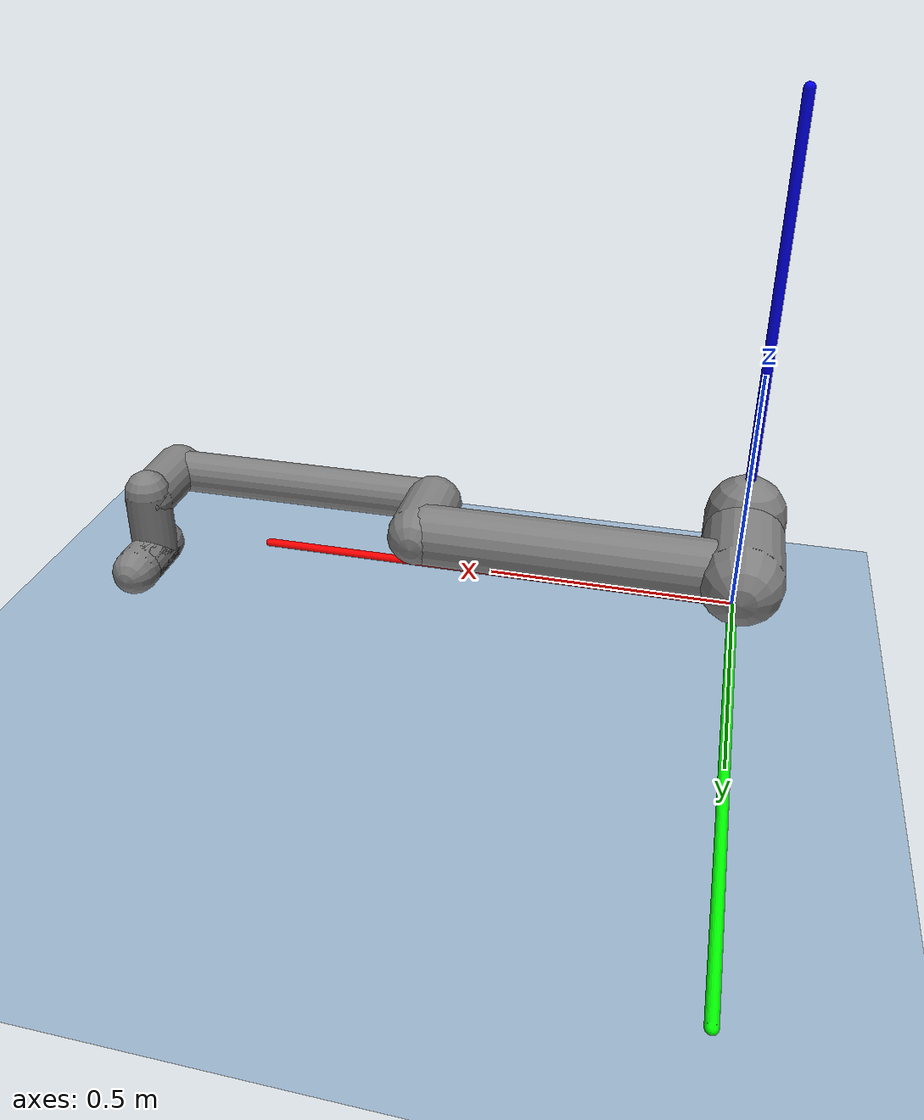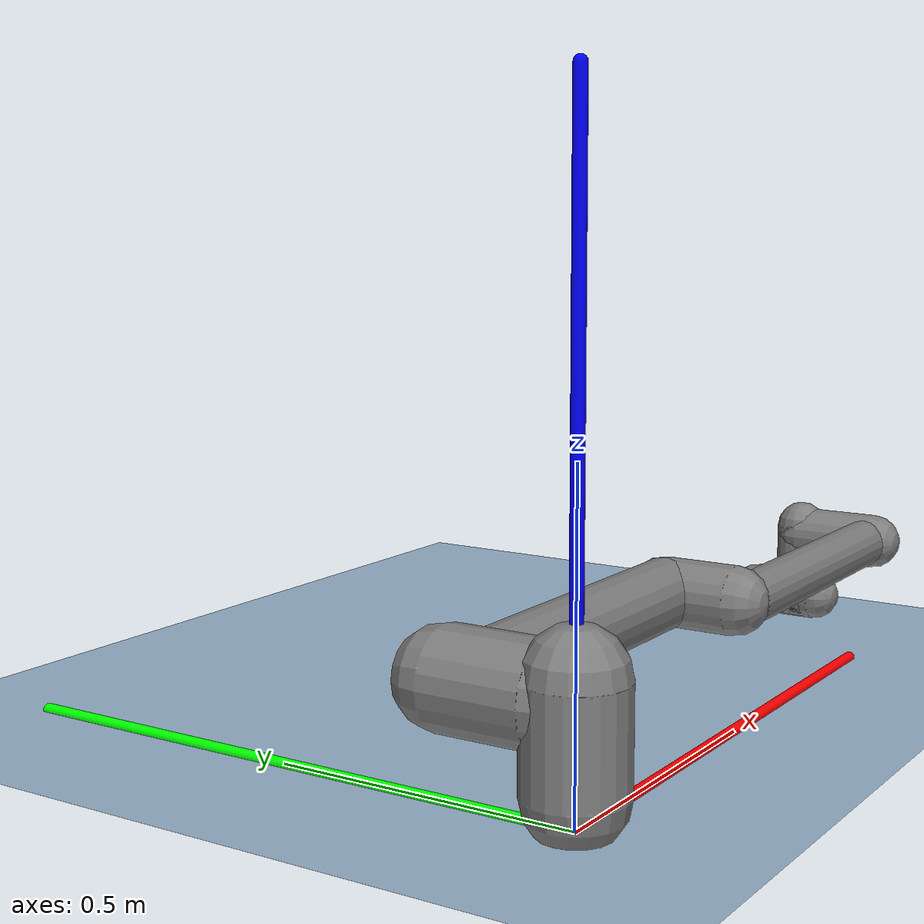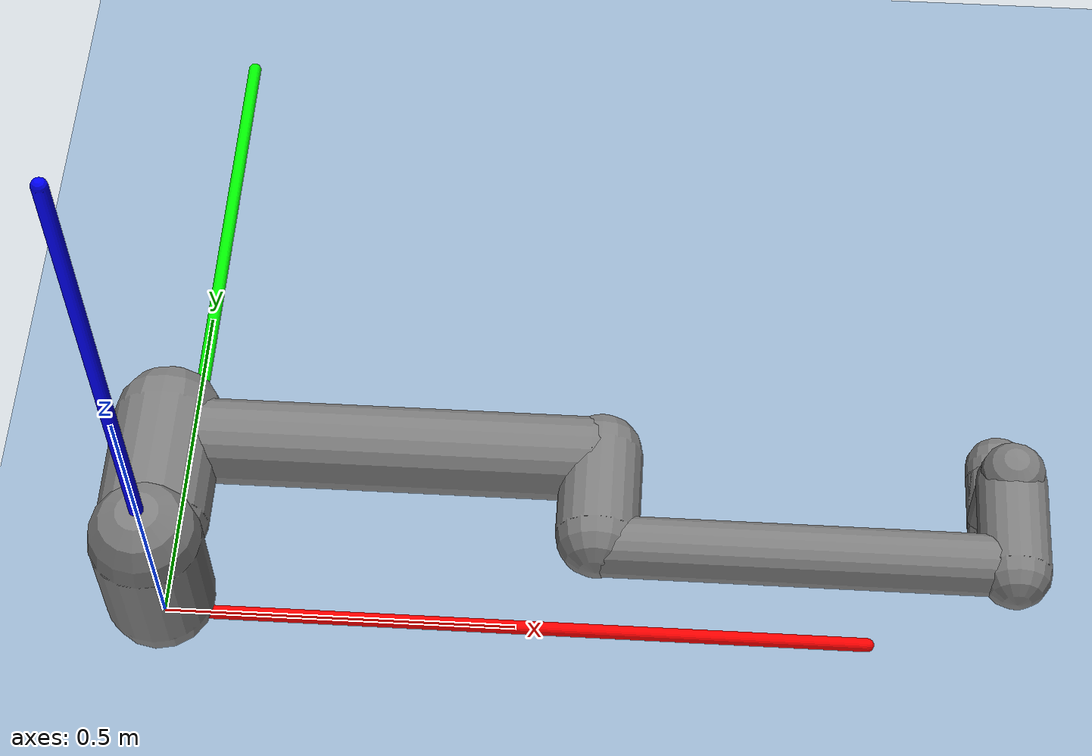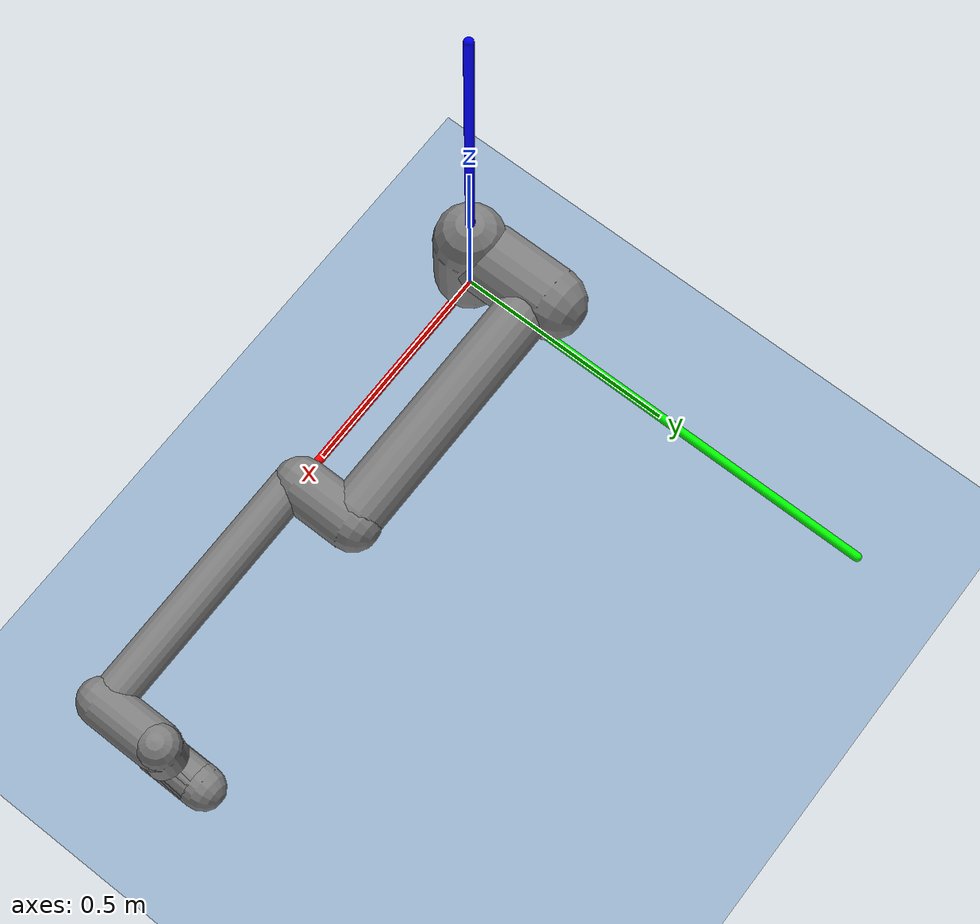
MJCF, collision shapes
<mujoco model="ur10e reach">

  <!-- Include reach scene (robot + floor, no box_detail camera) -->
  <include file="mjx_reach_scene.xml"/>

  <worldbody>
    <!-- mocap target: where the TCP should reach (red sphere) -->
    <body mocap="true" name="mocap_target">
      <geom type="sphere" size="0.02" rgba="1 0 0 0.4" contype="0" conaffinity="0"/>
    </body>
  </worldbody>

  <!-- Keyframes: 6-DOF arm only (no gripper joints, no box freejoint) -->
  <keyframe>
    <key name="low_home"
      qpos="0 -1.7 2.25 -2.15 -1.5 -1.5"
      ctrl="0 -1.7 2.25 -2.15 -1.5 -1.5"/>

    <key name="task_home"
      qpos="0.75 -2.2 1.57 -1.57 -1.57 0"
      ctrl="0.75 -2.2 1.57 -1.57 -1.57 0"/>

    <key name="tucked"
      qpos="0 -2.36 2.36 -1.57 -1.57 0"
      ctrl="0 -2.36 2.36 -1.57 -1.57 0"/>
  </keyframe>

  <!-- Sensors for reach task only -->
  <include file="ur10_reach_sensor.xml"/>

</mujoco>

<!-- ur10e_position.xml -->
<mujoco model="ur10e">
  <compiler angle="radian" eulerseq="xyz" meshdir="../universal_robots_ur10e/assets" autolimits="true"/>
  <option integrator="implicitfast"/>

  <!-- Default settings -->
  <default>
    <default class="ur10e">
      <material specular="0.5" shininess="0.25"/>
      <joint axis="0 1 0" range="-6.28319 6.28319" armature="0.1"/>
      <position ctrlrange="-6.2831 6.2831"/>
      <general biastype="affine" ctrlrange="-6.2831 6.2831" gainprm="5000" biasprm="0 -5000 -500"/>

      <default class="size4">
        <joint damping="10"/>
        <general forcerange="-330 330"/>
      </default>

      <default class="size3">
        <joint damping="5"/>
        <general forcerange="-150 150"/>
        <default class="size3_limited">
          <joint range="-3.1415 3.1415"/>
          <general ctrlrange="-3.1415 3.1415"/>
        </default>
      </default>

      <default class="size2">
        <joint damping="2"/>
        <general forcerange="-56 56"/>
      </default>

      <default class="visual">
        <geom type="mesh" contype="0" conaffinity="0" group="2"/>
      </default>

      <!-- Collision geometry -->
      <default class="collision">
        <geom type="capsule" group="3"/>
      </default>

      <!-- End-effector collision -->
      <default class="eef_collision">
        <geom type="capsule" group="3"/>
      </default>

      <site size="0.001" rgba="0.5 0.5 0.5 0.3" group="4"/>
    </default>
  </default>

  <asset>
    <material class="ur10e" name="black" rgba="0.033 0.033 0.033 1"/>
    <material class="ur10e" name="jointgray" rgba="0.278 0.278 0.278 1"/>
    <material class="ur10e" name="linkgray" rgba="0.82 0.82 0.82 1"/>
    <material class="ur10e" name="urblue" rgba="0.49 0.678 0.8 1"/>

    <!-- UR10 meshes -->
    <mesh file="base_0.obj"/>
    <mesh file="base_1.obj"/>
    <mesh file="shoulder_0.obj"/>
    <mesh file="shoulder_1.obj"/>
    <mesh file="shoulder_2.obj"/>
    <mesh file="upperarm_0.obj"/>
    <mesh file="upperarm_1.obj"/>
    <mesh file="upperarm_2.obj"/>
    <mesh file="upperarm_3.obj"/>
    <mesh file="forearm_0.obj"/>
    <mesh file="forearm_1.obj"/>
    <mesh file="forearm_2.obj"/>
    <mesh file="forearm_3.obj"/>
    <mesh file="wrist1_0.obj"/>
    <mesh file="wrist1_1.obj"/>
    <mesh file="wrist1_2.obj"/>
    <mesh file="wrist2_0.obj"/>
    <mesh file="wrist2_1.obj"/>
    <mesh file="wrist2_2.obj"/>
    <mesh file="wrist3.obj"/>
  </asset>

<!-- ================= UR10 Kinematic Chain ================= -->
  <worldbody>
    <light name="spotlight" mode="targetbodycom" target="wrist_2_link" pos="0 -1 2"/>

    <body name="base" childclass="ur10e">
      <inertial mass="4.0" pos="0 0 0" diaginertia="0.0061063308908 0.0061063308908 0.01125"/>
      <geom mesh="base_0" material="black" class="visual"/>
      <geom mesh="base_1" material="jointgray" class="visual"/>

      <!-- pos="0 0 0.181" means it is attached in Z-Axis relative to the Base center-->
      <body name="shoulder_link" pos="0 0 0.181">
        <inertial pos="0 1 0" mass="7.778" diaginertia="0.0314743 0.0314743 0.0218756"/>
        <joint name="shoulder_pan_joint" class="size4" axis="0 0 1"/>
        <geom mesh="shoulder_0" material="urblue" class="visual"/>
        <geom mesh="shoulder_1" material="black" class="visual"/>
        <geom mesh="shoulder_2" material="jointgray" class="visual"/>
        <geom class="collision" size="0.078 0.08" pos="0 0 -0.05"/>

        <body name="upper_arm_link" pos="0 0.176 0" quat="1 0 1 0">
          <inertial pos="0 0 0.3065" mass="12.93" diaginertia="0.423074 0.423074 0.0363656"/>
          <joint name="shoulder_lift_joint" class="size4"/>
          <geom mesh="upperarm_0" material="black" class="visual"/>
          <geom mesh="upperarm_1" material="jointgray" class="visual"/>
          <geom mesh="upperarm_2" material="urblue" class="visual"/>
          <geom mesh="upperarm_3" material="linkgray" class="visual"/>
          <geom class="collision" pos="0 -0.05 0" quat="1 1 0 0" size="0.078 0.08"/>
          <geom class="collision" size="0.06 0.3" pos="0 0 0.3"/>

          <body name="forearm_link" pos="0 -0.137 0.613">
            <inertial pos="0 0 0.2855" mass="3.87" diaginertia="0.11059 0.11059 0.0108844"/>
            <joint name="elbow_joint" class="size3_limited"/>
            <geom mesh="forearm_0" material="urblue" class="visual"/>
            <geom mesh="forearm_1" material="black" class="visual"/>
            <geom mesh="forearm_2" material="jointgray" class="visual"/>
            <geom mesh="forearm_3" material="linkgray" class="visual"/>
            <geom class="collision" pos="0 0.08 0" quat="1 1 0 0" size="0.058 0.065"/>
            <geom class="collision" size="0.043 0.28" pos="0 0 0.29"/>

            <body name="wrist_1_link" pos="0 0 0.571" quat="1 0 1 0">
              <inertial pos="0 0.135 0" quat="0.5 0.5 -0.5 0.5" mass="1.96"
                diaginertia="0.0055125 0.00510825 0.00510825"/>
              <joint name="wrist_1_joint" class="size2"/>
              <geom mesh="wrist1_0" material="black" class="visual"/>
              <geom mesh="wrist1_1" material="urblue" class="visual"/>
              <geom mesh="wrist1_2" material="jointgray" class="visual"/>
              <geom class="collision" pos="0 0.06 0" quat="1 1 0 0" size="0.05 0.07"/>

              <body name="wrist_2_link" pos="0 0.135 0">
                <inertial pos="0 0 0.12" quat="0.5 0.5 -0.5 0.5" mass="1.96"
                  diaginertia="0.0055125 0.00510825 0.00510825"/>
                <joint name="wrist_2_joint" axis="0 0 1" class="size2"/>
                <geom mesh="wrist2_0" material="black" class="visual"/>
                <geom mesh="wrist2_1" material="urblue" class="visual"/>
                <geom mesh="wrist2_2" material="jointgray" class="visual"/>
                <geom class="collision" size="0.046 0.065" pos="0 0 0.05"/>
                <geom class="collision" pos="0 0.028 0.12" quat="1 1 0 0" size="0.046 0.043"/>

                <body name="wrist_3_link" pos="0 0 0.12">
                  <inertial pos="0 0.092 0" quat="0 1 -1 0" mass="0.202"
                    diaginertia="0.000204525 0.000144346 0.000144346"/>
                  <joint name="wrist_3_joint" class="size2"/>
                  <geom material="linkgray" mesh="wrist3" class="visual"/>
                  <geom class="eef_collision" pos="0 0.03 0" quat="1 1 0 0" size="0.046 0.06"/>
                  <site name="attachment_site" pos="0 0.12 0" quat="-1 1 0 0"/>

                  <!-- TCP site at flange (1 cm diameter sphere, always visible) -->
                  <site name="tcp" type="sphere" pos="0 0.12 0" quat="-1 1 0 0" rgba="0 1 0 1" size="0.005" group="0"/>
                </body>
              </body>
            </body>
          </body>
        </body>
      </body>
    </body>
  </worldbody>

  <actuator>
    <!-- Arm actuators (6-DOF only, gripper removed) -->
    <general class="size4" name="shoulder_pan" joint="shoulder_pan_joint"/>
    <general class="size4" name="shoulder_lift" joint="shoulder_lift_joint"/>
    <general class="size3_limited" name="elbow" joint="elbow_joint"/>
    <general class="size2" name="wrist_1" joint="wrist_1_joint"/>
    <general class="size2" name="wrist_2" joint="wrist_2_joint"/>
    <general class="size2" name="wrist_3" joint="wrist_3_joint"/>
  </actuator>

<keyframe>
  <key name="home"
    qpos="0 -1.5708 1.5708 -1.5708 -1.5708 0"
    ctrl="0 -1.5708 1.5708 -1.5708 -1.5708 0"/>

  <key name="vertical_home"
    qpos="0 -1.5708 0 -1.5708 0 0"
    ctrl="0 -1.5708 0 -1.5708 0 0"/>

</keyframe>
</mujoco>

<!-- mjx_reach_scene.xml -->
<mujoco model="ur10e reach scene">
<include file="../universal_robots_ur10e/ur10e_position.xml"/>

  <worldbody>
  <!-- World coordinate frame visualization -->
    <geom name="world_x_axis" type="capsule" size="0.01 0.5" pos="0.5 0 0"
          quat="0.7071 0 0.7071 0" rgba="1 0 0 1" contype="0" conaffinity="0"/>
    <geom name="world_y_axis" type="capsule" size="0.01 0.5" pos="0 0.5 0"
          quat="0.7071 -0.7071 0 0" rgba="0 1 0 1" contype="0" conaffinity="0"/>
    <geom name="world_z_axis" type="capsule" size="0.01 0.5" pos="0 0 0.5"
          rgba="0 0 1 1" contype="0" conaffinity="0"/>

    <!--My floor definition-->
    <light pos="0 0 3" dir="0 0 -1" directional="true"/>
    <geom name="floor" type="plane" size="0 0 0.05" material="groundplane" contype="1" conaffinity="3" solref="0.001 1"/>
    <!-- Default diagonal top-down -->
    <camera name="front" fovy="42" pos="1.176 0.001 0.483" xyaxes="0.006 1.000 -0.000 -0.720 0.004 0.694"/>

    <!-- Side view from 120 degrees -->
    <body name="camera_target" pos="0.4 0 0.4">
      <geom type="sphere" size="0.005" rgba="1 0 0 0" contype="0" conaffinity="0"/>
    </body>
    <camera name="side_130" pos="0.8 -1.1 1.2" mode="targetbody" target="camera_target" fovy="70"/>
    <!-- box_detail camera removed: no box body in reach task -->
  </worldbody>

  <statistic center="0.4 0 0.4" extent="1"/>

  <option timestep="0.005" iterations="12" ls_iterations="12"
  integrator="implicitfast">
    <flag eulerdamp="disable"/>
  </option>

  <custom>
    <numeric data="12" name="max_contact_points"/>
  </custom>

  <visual>
    <headlight diffuse=".8 .8 .8" ambient=".2 .2 .2" specular="1 1 1"/>
    <rgba force="1 0 0 1"/>
    <global azimuth="-40" elevation="-30" offwidth="960" offheight="720"/>
    <map force="0.01"/>
    <quality shadowsize="8192"/>
    <scale contactwidth="0.075" contactheight="0.025" forcewidth="0.05" com="0.05" framewidth="0.01" framelength="0.2"/>
  </visual>

  <asset>
    <!-- Sky and floor materials -->
    <texture type="skybox" builtin="gradient" rgb1="0.8 0.9 1" rgb2="0.4 0.5 0.6" width="800" height="800"/>
    <texture type="2d" name="grid" builtin="checker" rgb1="0.8 0.9 1" rgb2="0.4 0.5 0.6" width="512" height="512" mark="edge" markrgb="0.2 0.2 0.2"/>
    <material name="groundplane" texture="grid" texrepeat="5 5" texuniform="true" reflectance="0.2"/>
  </asset>
</mujoco>

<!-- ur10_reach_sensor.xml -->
<mujoco>
<!-- Sensors for reach task only (no gripper, no box) -->
  <sensor>
    <!-- TCP position tracking -->
    <framepos name="tcp_position" objtype="site" objname="tcp"/>
  </sensor>
</mujoco>
